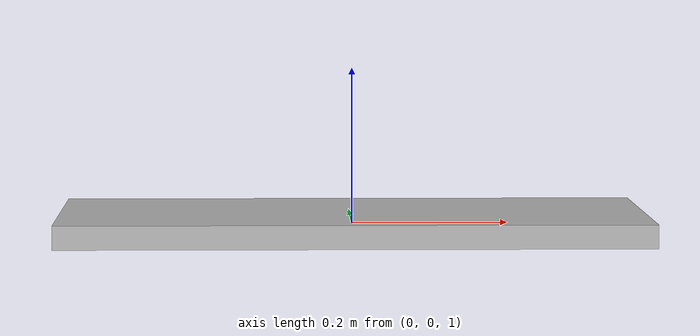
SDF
<?xml version="1.0" ?>
<sdf version="1.5">
  <model name="tag">
    <static>true</static>
    <link name="link">
      <collision name="surface">
        <pose>0 0 1.0 0 0 0</pose>
        <geometry>
          <box>
            <size>0.75 0.4 0.03</size>
          </box>
        </geometry>
        <surface>
          <friction>
            <ode>
              <mu>0.6</mu>
              <mu2>0.6</mu2>
            </ode>
          </friction>
        </surface>
      </collision>
      <visual name="visual1">
        <pose>0 0 1.0 0 0 0</pose>
        <geometry>
          <box>
            <size>0.75 0.4 0.03</size>
          </box>
        </geometry>
        <material>
          <script>
            <uri>model://miro_tag2/materials/scripts</uri>
            <uri>model://miro_tag2/materials/textures</uri>
            <name>miro_tag2/Diffuse</name>
          </script>
        </material>
      </visual>

    </link>
  </model>
</sdf>
